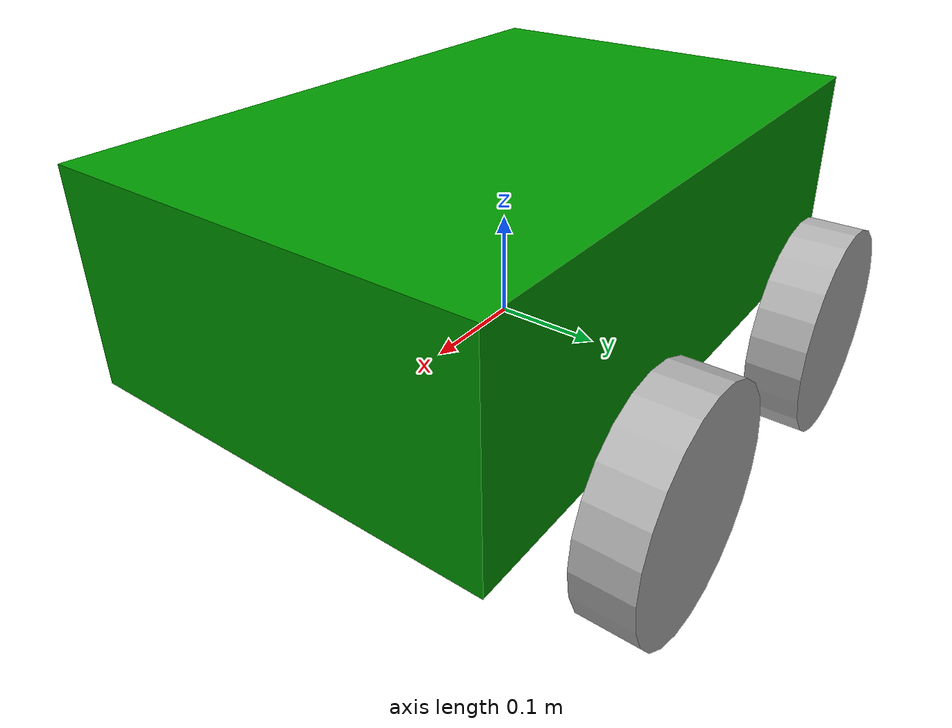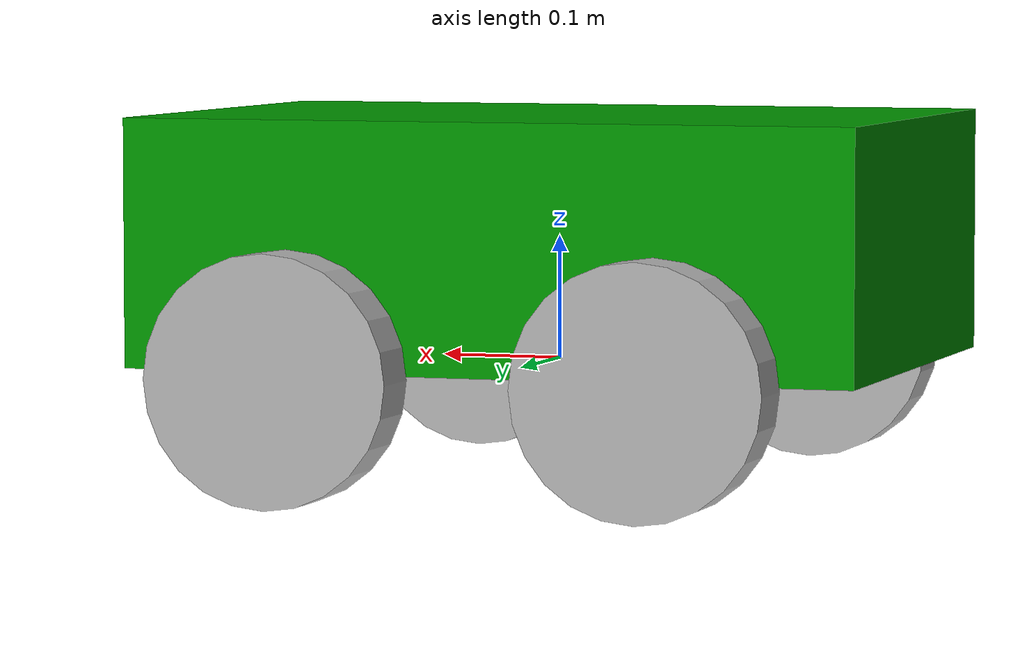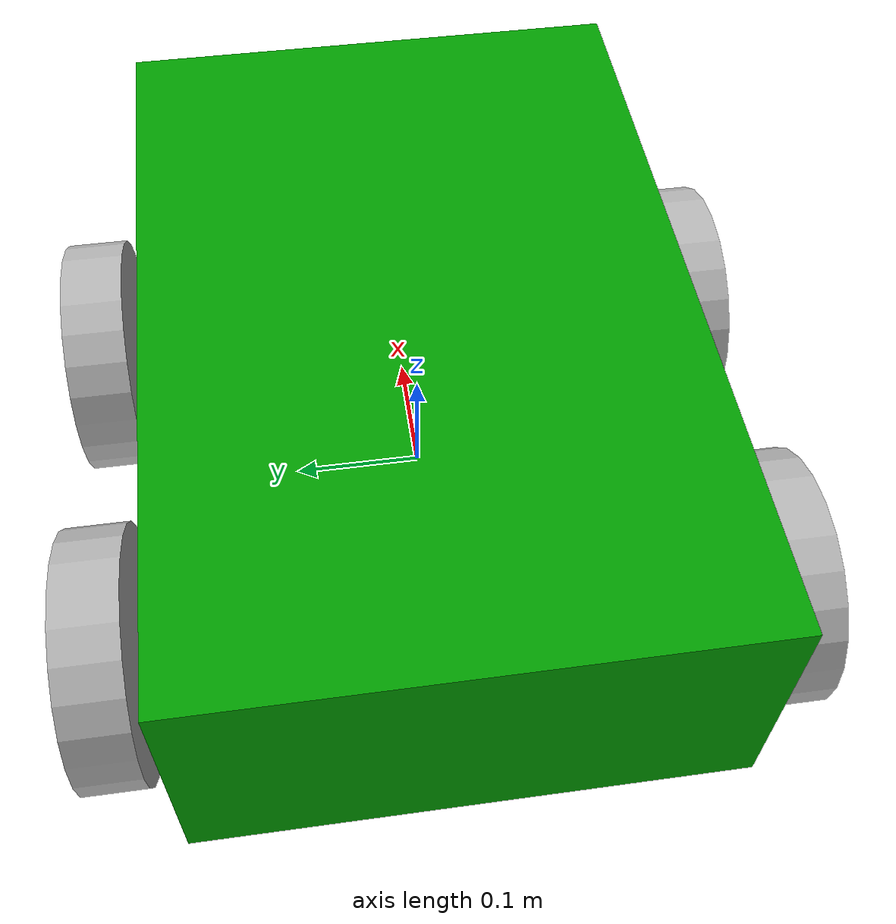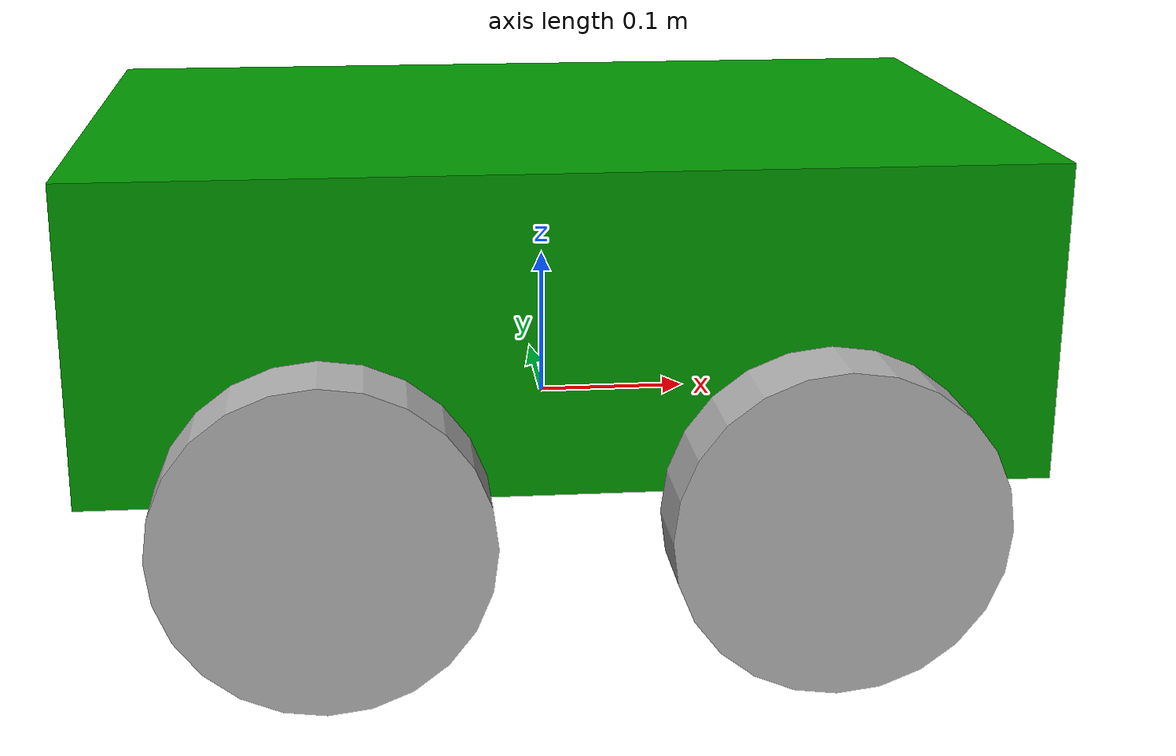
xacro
<?xml version="1.0"?>
<robot name="my_robot">

    <material name = "grey">
        <color rgba = "0.7 0.7 0.7 1"/>
    </material>

    <material name = "green">
        <color rgba = "0 0.6 0 1"/>
    </material>

    <material name = "white">
        <color rgba = "1 1 1 1"/>
    </material>

    <link name="base_link">
        <visual>
            <geometry>
                <box size="0.6 0.4 0.2"/>
            </geometry>
            <origin xyz="0 0 0.1" rpy="0 0 0"/>
            <material name="green" />
        </visual>
    </link>

    <link name="back_left_wheel">
        <visual>
            <geometry>
                <cylinder radius="0.1" length="0.05"/>
            </geometry>
            <origin xyz="0 0 0" rpy="1.57 0 0"/>
            <material name="grey"/>
        </visual>
    </link>

    <link name="back_right_wheel">
        <visual>
            <geometry>
                <cylinder radius="0.1" length="0.05"/>
            </geometry>
            <origin xyz="0 0 0" rpy="1.57 0 0"/>
            <material name="grey"/>
        </visual>
    </link>

    <link name="front_right_wheel">
        <visual>
            <geometry>
                <cylinder radius="0.1" length="0.05"/>
            </geometry>
            <origin xyz="0 0 0" rpy="1.57 0 0"/>
            <material name="grey"/>
        </visual>
    </link>

    <link name="front_left_wheel">
        <visual>
            <geometry>
                <cylinder radius="0.1" length="0.05"/>
            </geometry>
            <origin xyz="0 0 0" rpy="1.57 0 0"/>
            <material name="grey"/>
        </visual>
    </link>

    <joint name="base_front_left_wheel_joint" type="continuous">
        <parent link="base_link" />
        <child link="front_left_wheel" />
        <origin xyz="0.15 0.255 0" rpy="0 0 0" />
        <axis xyz="0 1 0" />
    </joint>

    <joint name="base_front_right_wheel_joint" type="continuous">
        <parent link="base_link" />
        <child link="front_right_wheel" />
        <origin xyz="0.15 -0.255 0" rpy="0 0 0" />
        <axis xyz="0 1 0" />
    </joint>

    <joint name="base_back_left_wheel_joint" type="continuous">
        <parent link="base_link" />
        <child link="back_left_wheel" />
        <origin xyz="-0.15 0.255 0" rpy="0 0 0" />
        <axis xyz="0 1 0" />
    </joint>

    <joint name="base_back_right_wheel_joint" type="continuous">
        <parent link="base_link" />
        <child link="back_right_wheel" />
        <origin xyz="-0.15 -0.255 0" rpy="0 0 0" />
        <axis xyz="0 1 0" />
    </joint>

</robot>
